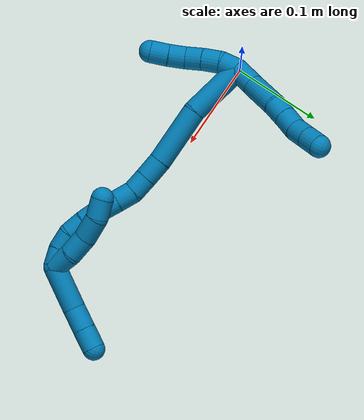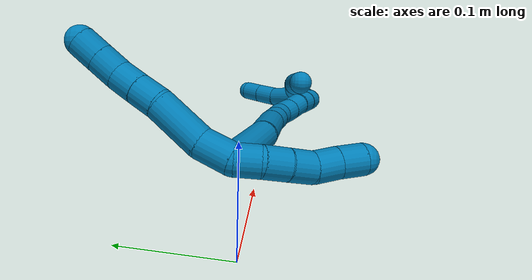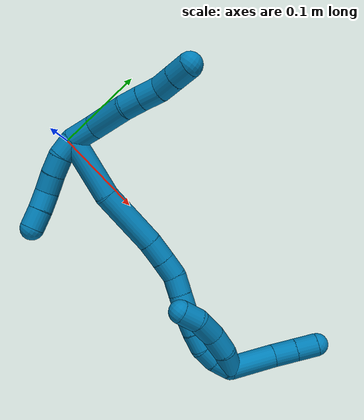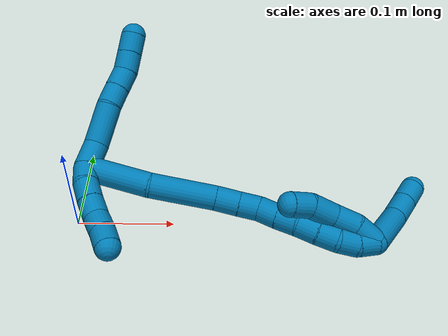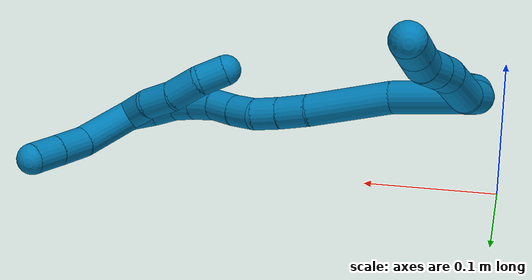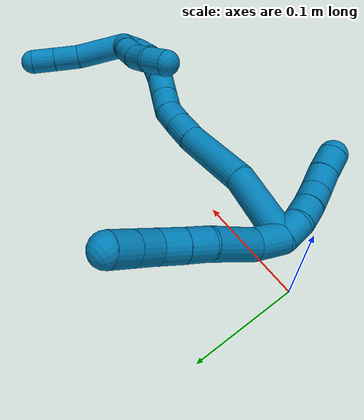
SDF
<sdf version="1.7">
 <world name="default">
  <model name="9">
   <static>0</static>
   <link name="9">
    <collision name="collision-cylinder-e_1_2_8">
     <pose>0.005603 0.002586 -0.011868 -2.92702 0.43216 -2.22932</pose>
     <geometry><cylinder><radius>0.0125</radius><length>0.026754</length></cylinder></geometry>
     <surface>
      <friction><ode><mu>1.16</mu><mu2>1.16</mu2><slip1>0</slip1><slip2>0</slip2></ode></friction>
      <contact><ode><kp>1e+06</kp><kd>1</kd><max_vel>0</max_vel><min_depth>0.001</min_depth></ode></contact>
     </surface>
    </collision>
    <visual name="visual-cylinder-e_1_2_8">
     <pose>0.005603 0.002586 -0.011868 -2.92702 0.43216 -2.22932</pose>
     <geometry><cylinder><radius>0.0125</radius><length>0.026754</length></cylinder></geometry>
     <material><ambient>0 0.490196 0.709804 1</ambient></material>
    </visual>
    <collision name="collision-cylinder-e_2_8_9">
     <pose>0.020439 0.015241 -0.039958 -2.58611 0.450484 -1.35393</pose>
     <geometry><cylinder><radius>0.0125</radius><length>0.042415</length></cylinder></geometry>
     <surface>
      <friction><ode><mu>1.16</mu><mu2>1.16</mu2><slip1>0</slip1><slip2>0</slip2></ode></friction>
      <contact><ode><kp>1e+06</kp><kd>1</kd><max_vel>0</max_vel><min_depth>0.001</min_depth></ode></contact>
     </surface>
    </collision>
    <visual name="visual-cylinder-e_2_8_9">
     <pose>0.020439 0.015241 -0.039958 -2.58611 0.450484 -1.35393</pose>
     <geometry><cylinder><radius>0.0125</radius><length>0.042415</length></cylinder></geometry>
     <material><ambient>0 0.490196 0.709804 1</ambient></material>
    </visual>
    <collision name="collision-cylinder-e_3_9_10">
     <pose>0.034576 0.028274 -0.064493 -2.79902 0.507081 -1.96432</pose>
     <geometry><cylinder><radius>0.0125</radius><length>0.020193</length></cylinder></geometry>
     <surface>
      <friction><ode><mu>1.16</mu><mu2>1.16</mu2><slip1>0</slip1><slip2>0</slip2></ode></friction>
      <contact><ode><kp>1e+06</kp><kd>1</kd><max_vel>0</max_vel><min_depth>0.001</min_depth></ode></contact>
     </surface>
    </collision>
    <visual name="visual-cylinder-e_3_9_10">
     <pose>0.034576 0.028274 -0.064493 -2.79902 0.507081 -1.96432</pose>
     <geometry><cylinder><radius>0.0125</radius><length>0.020193</length></cylinder></geometry>
     <material><ambient>0 0.490196 0.709804 1</ambient></material>
    </visual>
    <collision name="collision-cylinder-e_4_10_11">
     <pose>0.044739 0.034222 -0.08113 -2.79753 0.53658 -2.01435</pose>
     <geometry><cylinder><radius>0.0125</radius><length>0.020577</length></cylinder></geometry>
     <surface>
      <friction><ode><mu>1.16</mu><mu2>1.16</mu2><slip1>0</slip1><slip2>0</slip2></ode></friction>
      <contact><ode><kp>1e+06</kp><kd>1</kd><max_vel>0</max_vel><min_depth>0.001</min_depth></ode></contact>
     </surface>
    </collision>
    <visual name="visual-cylinder-e_4_10_11">
     <pose>0.044739 0.034222 -0.08113 -2.79753 0.53658 -2.01435</pose>
     <geometry><cylinder><radius>0.0125</radius><length>0.020577</length></cylinder></geometry>
     <material><ambient>0 0.490196 0.709804 1</ambient></material>
    </visual>
    <collision name="collision-cylinder-e_5_11_12">
     <pose>0.053506 0.042344 -0.097299 -2.56153 0.357939 -1.08987</pose>
     <geometry><cylinder><radius>0.0125</radius><length>0.020026</length></cylinder></geometry>
     <surface>
      <friction><ode><mu>1.16</mu><mu2>1.16</mu2><slip1>0</slip1><slip2>0</slip2></ode></friction>
      <contact><ode><kp>1e+06</kp><kd>1</kd><max_vel>0</max_vel><min_depth>0.001</min_depth></ode></contact>
     </surface>
    </collision>
    <visual name="visual-cylinder-e_5_11_12">
     <pose>0.053506 0.042344 -0.097299 -2.56153 0.357939 -1.08987</pose>
     <geometry><cylinder><radius>0.0125</radius><length>0.020026</length></cylinder></geometry>
     <material><ambient>0 0.490196 0.709804 1</ambient></material>
    </visual>
    <collision name="collision-cylinder-e_6_12_6">
     <pose>0.060532 0.052628 -0.112987 -2.56112 0.358792 -1.09136</pose>
     <geometry><cylinder><radius>0.0125</radius><length>0.020035</length></cylinder></geometry>
     <surface>
      <friction><ode><mu>1.16</mu><mu2>1.16</mu2><slip1>0</slip1><slip2>0</slip2></ode></friction>
      <contact><ode><kp>1e+06</kp><kd>1</kd><max_vel>0</max_vel><min_depth>0.001</min_depth></ode></contact>
     </surface>
    </collision>
    <visual name="visual-cylinder-e_6_12_6">
     <pose>0.060532 0.052628 -0.112987 -2.56112 0.358792 -1.09136</pose>
     <geometry><cylinder><radius>0.0125</radius><length>0.020035</length></cylinder></geometry>
     <material><ambient>0 0.490196 0.709804 1</ambient></material>
    </visual>
    <collision name="collision-cylinder-e_1_2_13">
     <pose>-0.000178 -0.000176 0.009997 0.017642 -0.017762 -0.000157</pose>
     <geometry><cylinder><radius>0.0125</radius><length>0.02</length></cylinder></geometry>
     <surface>
      <friction><ode><mu>1.16</mu><mu2>1.16</mu2><slip1>0</slip1><slip2>0</slip2></ode></friction>
      <contact><ode><kp>1e+06</kp><kd>1</kd><max_vel>0</max_vel><min_depth>0.001</min_depth></ode></contact>
     </surface>
    </collision>
    <visual name="visual-cylinder-e_1_2_13">
     <pose>-0.000178 -0.000176 0.009997 0.017642 -0.017762 -0.000157</pose>
     <geometry><cylinder><radius>0.0125</radius><length>0.02</length></cylinder></geometry>
     <material><ambient>0 0.490196 0.709804 1</ambient></material>
    </visual>
    <collision name="collision-cylinder-e_2_13_14">
     <pose>0.001395 -0.002367 0.029631 0.206062 0.175905 0.018235</pose>
     <geometry><cylinder><radius>0.0125</radius><length>0.02</length></cylinder></geometry>
     <surface>
      <friction><ode><mu>1.16</mu><mu2>1.16</mu2><slip1>0</slip1><slip2>0</slip2></ode></friction>
      <contact><ode><kp>1e+06</kp><kd>1</kd><max_vel>0</max_vel><min_depth>0.001</min_depth></ode></contact>
     </surface>
    </collision>
    <visual name="visual-cylinder-e_2_13_14">
     <pose>0.001395 -0.002367 0.029631 0.206062 0.175905 0.018235</pose>
     <geometry><cylinder><radius>0.0125</radius><length>0.02</length></cylinder></geometry>
     <material><ambient>0 0.490196 0.709804 1</ambient></material>
    </visual>
    <collision name="collision-cylinder-e_3_14_15">
     <pose>0.005523 -0.006791 0.048678 0.250659 0.240156 0.030401</pose>
     <geometry><cylinder><radius>0.0125</radius><length>0.02</length></cylinder></geometry>
     <surface>
      <friction><ode><mu>1.16</mu><mu2>1.16</mu2><slip1>0</slip1><slip2>0</slip2></ode></friction>
      <contact><ode><kp>1e+06</kp><kd>1</kd><max_vel>0</max_vel><min_depth>0.001</min_depth></ode></contact>
     </surface>
    </collision>
    <visual name="visual-cylinder-e_3_14_15">
     <pose>0.005523 -0.006791 0.048678 0.250659 0.240156 0.030401</pose>
     <geometry><cylinder><radius>0.0125</radius><length>0.02</length></cylinder></geometry>
     <material><ambient>0 0.490196 0.709804 1</ambient></material>
    </visual>
    <collision name="collision-cylinder-e_4_15_16">
     <pose>0.010999 -0.00853 0.067572 -0.070591 0.314922 -0.011213</pose>
     <geometry><cylinder><radius>0.0125</radius><length>0.02</length></cylinder></geometry>
     <surface>
      <friction><ode><mu>1.16</mu><mu2>1.16</mu2><slip1>0</slip1><slip2>0</slip2></ode></friction>
      <contact><ode><kp>1e+06</kp><kd>1</kd><max_vel>0</max_vel><min_depth>0.001</min_depth></ode></contact>
     </surface>
    </collision>
    <visual name="visual-cylinder-e_4_15_16">
     <pose>0.010999 -0.00853 0.067572 -0.070591 0.314922 -0.011213</pose>
     <geometry><cylinder><radius>0.0125</radius><length>0.02</length></cylinder></geometry>
     <material><ambient>0 0.490196 0.709804 1</ambient></material>
    </visual>
    <collision name="collision-cylinder-e_5_16_5">
     <pose>0.016463 -0.00734 0.086759 -0.053465 0.238921 -0.006419</pose>
     <geometry><cylinder><radius>0.0125</radius><length>0.02</length></cylinder></geometry>
     <surface>
      <friction><ode><mu>1.16</mu><mu2>1.16</mu2><slip1>0</slip1><slip2>0</slip2></ode></friction>
      <contact><ode><kp>1e+06</kp><kd>1</kd><max_vel>0</max_vel><min_depth>0.001</min_depth></ode></contact>
     </surface>
    </collision>
    <visual name="visual-cylinder-e_5_16_5">
     <pose>0.016463 -0.00734 0.086759 -0.053465 0.238921 -0.006419</pose>
     <geometry><cylinder><radius>0.0125</radius><length>0.02</length></cylinder></geometry>
     <material><ambient>0 0.490196 0.709804 1</ambient></material>
    </visual>
    <collision name="collision-cylinder-e_1_2_17">
     <pose>0.02937 -0.007481 0.012116 0.553132 1.11935 0.351969</pose>
     <geometry><cylinder><radius>0.0125</radius><length>0.065279</length></cylinder></geometry>
     <surface>
      <friction><ode><mu>1.16</mu><mu2>1.16</mu2><slip1>0</slip1><slip2>0</slip2></ode></friction>
      <contact><ode><kp>1e+06</kp><kd>1</kd><max_vel>0</max_vel><min_depth>0.001</min_depth></ode></contact>
     </surface>
    </collision>
    <visual name="visual-cylinder-e_1_2_17">
     <pose>0.02937 -0.007481 0.012116 0.553132 1.11935 0.351969</pose>
     <geometry><cylinder><radius>0.0125</radius><length>0.065279</length></cylinder></geometry>
     <material><ambient>0 0.490196 0.709804 1</ambient></material>
    </visual>
    <collision name="collision-cylinder-e_2_17_18">
     <pose>0.08907 -0.026145 0.030354 1.06995 1.17289 0.750214</pose>
     <geometry><cylinder><radius>0.0125</radius><length>0.065802</length></cylinder></geometry>
     <surface>
      <friction><ode><mu>1.16</mu><mu2>1.16</mu2><slip1>0</slip1><slip2>0</slip2></ode></friction>
      <contact><ode><kp>1e+06</kp><kd>1</kd><max_vel>0</max_vel><min_depth>0.001</min_depth></ode></contact>
     </surface>
    </collision>
    <visual name="visual-cylinder-e_2_17_18">
     <pose>0.08907 -0.026145 0.030354 1.06995 1.17289 0.750214</pose>
     <geometry><cylinder><radius>0.0125</radius><length>0.065802</length></cylinder></geometry>
     <material><ambient>0 0.490196 0.709804 1</ambient></material>
    </visual>
    <collision name="collision-cylinder-e_3_18_19">
     <pose>0.130294 -0.041001 0.039906 0.819706 1.1385 0.542329</pose>
     <geometry><cylinder><radius>0.0125</radius><length>0.023993</length></cylinder></geometry>
     <surface>
      <friction><ode><mu>1.16</mu><mu2>1.16</mu2><slip1>0</slip1><slip2>0</slip2></ode></friction>
      <contact><ode><kp>1e+06</kp><kd>1</kd><max_vel>0</max_vel><min_depth>0.001</min_depth></ode></contact>
     </surface>
    </collision>
    <visual name="visual-cylinder-e_3_18_19">
     <pose>0.130294 -0.041001 0.039906 0.819706 1.1385 0.542329</pose>
     <geometry><cylinder><radius>0.0125</radius><length>0.023993</length></cylinder></geometry>
     <material><ambient>0 0.490196 0.709804 1</ambient></material>
    </visual>
    <collision name="collision-cylinder-e_4_19_20">
     <pose>0.150792 -0.047382 0.04649 0.709104 1.1624 0.477092</pose>
     <geometry><cylinder><radius>0.0125</radius><length>0.020932</length></cylinder></geometry>
     <surface>
      <friction><ode><mu>1.16</mu><mu2>1.16</mu2><slip1>0</slip1><slip2>0</slip2></ode></friction>
      <contact><ode><kp>1e+06</kp><kd>1</kd><max_vel>0</max_vel><min_depth>0.001</min_depth></ode></contact>
     </surface>
    </collision>
    <visual name="visual-cylinder-e_4_19_20">
     <pose>0.150792 -0.047382 0.04649 0.709104 1.1624 0.477092</pose>
     <geometry><cylinder><radius>0.0125</radius><length>0.020932</length></cylinder></geometry>
     <material><ambient>0 0.490196 0.709804 1</ambient></material>
    </visual>
    <collision name="collision-cylinder-e_5_20_21">
     <pose>0.168823 -0.051439 0.05568 0.220134 0.937609 0.111826</pose>
     <geometry><cylinder><radius>0.0125</radius><length>0.020904</length></cylinder></geometry>
     <surface>
      <friction><ode><mu>1.16</mu><mu2>1.16</mu2><slip1>0</slip1><slip2>0</slip2></ode></friction>
      <contact><ode><kp>1e+06</kp><kd>1</kd><max_vel>0</max_vel><min_depth>0.001</min_depth></ode></contact>
     </surface>
    </collision>
    <visual name="visual-cylinder-e_5_20_21">
     <pose>0.168823 -0.051439 0.05568 0.220134 0.937609 0.111826</pose>
     <geometry><cylinder><radius>0.0125</radius><length>0.020904</length></cylinder></geometry>
     <material><ambient>0 0.490196 0.709804 1</ambient></material>
    </visual>
    <collision name="collision-cylinder-e_6_21_22">
     <pose>0.185947 -0.0533 0.067838 0.083209 0.955852 0.043118</pose>
     <geometry><cylinder><radius>0.0125</radius><length>0.021298</length></cylinder></geometry>
     <surface>
      <friction><ode><mu>1.16</mu><mu2>1.16</mu2><slip1>0</slip1><slip2>0</slip2></ode></friction>
      <contact><ode><kp>1e+06</kp><kd>1</kd><max_vel>0</max_vel><min_depth>0.001</min_depth></ode></contact>
     </surface>
    </collision>
    <visual name="visual-cylinder-e_6_21_22">
     <pose>0.185947 -0.0533 0.067838 0.083209 0.955852 0.043118</pose>
     <geometry><cylinder><radius>0.0125</radius><length>0.021298</length></cylinder></geometry>
     <material><ambient>0 0.490196 0.709804 1</ambient></material>
    </visual>
    <collision name="collision-cylinder-e_7_22_23">
     <pose>0.203277 -0.056249 0.079353 0.424607 0.969756 0.226148</pose>
     <geometry><cylinder><radius>0.0125</radius><length>0.020932</length></cylinder></geometry>
     <surface>
      <friction><ode><mu>1.16</mu><mu2>1.16</mu2><slip1>0</slip1><slip2>0</slip2></ode></friction>
      <contact><ode><kp>1e+06</kp><kd>1</kd><max_vel>0</max_vel><min_depth>0.001</min_depth></ode></contact>
     </surface>
    </collision>
    <visual name="visual-cylinder-e_7_22_23">
     <pose>0.203277 -0.056249 0.079353 0.424607 0.969756 0.226148</pose>
     <geometry><cylinder><radius>0.0125</radius><length>0.020932</length></cylinder></geometry>
     <material><ambient>0 0.490196 0.709804 1</ambient></material>
    </visual>
    <collision name="collision-cylinder-e_8_23_24">
     <pose>0.220508 -0.061414 0.089153 0.554123 1.02842 0.318567</pose>
     <geometry><cylinder><radius>0.0125</radius><length>0.02008</length></cylinder></geometry>
     <surface>
      <friction><ode><mu>1.16</mu><mu2>1.16</mu2><slip1>0</slip1><slip2>0</slip2></ode></friction>
      <contact><ode><kp>1e+06</kp><kd>1</kd><max_vel>0</max_vel><min_depth>0.001</min_depth></ode></contact>
     </surface>
    </collision>
    <visual name="visual-cylinder-e_8_23_24">
     <pose>0.220508 -0.061414 0.089153 0.554123 1.02842 0.318567</pose>
     <geometry><cylinder><radius>0.0125</radius><length>0.02008</length></cylinder></geometry>
     <material><ambient>0 0.490196 0.709804 1</ambient></material>
    </visual>
    <collision name="collision-cylinder-e_9_24_25">
     <pose>0.238157 -0.068394 0.095186 1.20556 1.10458 0.802261</pose>
     <geometry><cylinder><radius>0.0125</radius><length>0.020261</length></cylinder></geometry>
     <surface>
      <friction><ode><mu>1.16</mu><mu2>1.16</mu2><slip1>0</slip1><slip2>0</slip2></ode></friction>
      <contact><ode><kp>1e+06</kp><kd>1</kd><max_vel>0</max_vel><min_depth>0.001</min_depth></ode></contact>
     </surface>
    </collision>
    <visual name="visual-cylinder-e_9_24_25">
     <pose>0.238157 -0.068394 0.095186 1.20556 1.10458 0.802261</pose>
     <geometry><cylinder><radius>0.0125</radius><length>0.020261</length></cylinder></geometry>
     <material><ambient>0 0.490196 0.709804 1</ambient></material>
    </visual>
    <collision name="collision-cylinder-e_10_25_1">
     <pose>0.256906 -0.075704 0.095465 1.98603 1.23914 1.66047</pose>
     <geometry><cylinder><radius>0.0125</radius><length>0.020518</length></cylinder></geometry>
     <surface>
      <friction><ode><mu>1.16</mu><mu2>1.16</mu2><slip1>0</slip1><slip2>0</slip2></ode></friction>
      <contact><ode><kp>1e+06</kp><kd>1</kd><max_vel>0</max_vel><min_depth>0.001</min_depth></ode></contact>
     </surface>
    </collision>
    <visual name="visual-cylinder-e_10_25_1">
     <pose>0.256906 -0.075704 0.095465 1.98603 1.23914 1.66047</pose>
     <geometry><cylinder><radius>0.0125</radius><length>0.020518</length></cylinder></geometry>
     <material><ambient>0 0.490196 0.709804 1</ambient></material>
    </visual>
    <collision name="collision-cylinder-e_1_1_26">
     <pose>0.258425 -0.071081 0.08806 -2.23866 -0.696543 1.28548</pose>
     <geometry><cylinder><radius>0.0125</radius><length>0.025503</length></cylinder></geometry>
     <surface>
      <friction><ode><mu>1.16</mu><mu2>1.16</mu2><slip1>0</slip1><slip2>0</slip2></ode></friction>
      <contact><ode><kp>1e+06</kp><kd>1</kd><max_vel>0</max_vel><min_depth>0.001</min_depth></ode></contact>
     </surface>
    </collision>
    <visual name="visual-cylinder-e_1_1_26">
     <pose>0.258425 -0.071081 0.08806 -2.23866 -0.696543 1.28548</pose>
     <geometry><cylinder><radius>0.0125</radius><length>0.025503</length></cylinder></geometry>
     <material><ambient>0 0.490196 0.709804 1</ambient></material>
    </visual>
    <collision name="collision-cylinder-e_2_26_27">
     <pose>0.239873 -0.057368 0.078058 -2.14975 -0.963387 1.53648</pose>
     <geometry><cylinder><radius>0.0125</radius><length>0.025259</length></cylinder></geometry>
     <surface>
      <friction><ode><mu>1.16</mu><mu2>1.16</mu2><slip1>0</slip1><slip2>0</slip2></ode></friction>
      <contact><ode><kp>1e+06</kp><kd>1</kd><max_vel>0</max_vel><min_depth>0.001</min_depth></ode></contact>
     </surface>
    </collision>
    <visual name="visual-cylinder-e_2_26_27">
     <pose>0.239873 -0.057368 0.078058 -2.14975 -0.963387 1.53648</pose>
     <geometry><cylinder><radius>0.0125</radius><length>0.025259</length></cylinder></geometry>
     <material><ambient>0 0.490196 0.709804 1</ambient></material>
    </visual>
    <collision name="collision-cylinder-e_3_27_28">
     <pose>0.219179 -0.042924 0.071853 -1.83343 -0.870047 1.08986</pose>
     <geometry><cylinder><radius>0.0125</radius><length>0.027013</length></cylinder></geometry>
     <surface>
      <friction><ode><mu>1.16</mu><mu2>1.16</mu2><slip1>0</slip1><slip2>0</slip2></ode></friction>
      <contact><ode><kp>1e+06</kp><kd>1</kd><max_vel>0</max_vel><min_depth>0.001</min_depth></ode></contact>
     </surface>
    </collision>
    <visual name="visual-cylinder-e_3_27_28">
     <pose>0.219179 -0.042924 0.071853 -1.83343 -0.870047 1.08986</pose>
     <geometry><cylinder><radius>0.0125</radius><length>0.027013</length></cylinder></geometry>
     <material><ambient>0 0.490196 0.709804 1</ambient></material>
    </visual>
    <collision name="collision-cylinder-e_4_28_4">
     <pose>0.199194 -0.029186 0.070923 -1.32607 -1.05397 0.853066</pose>
     <geometry><cylinder><radius>0.0125</radius><length>0.022224</length></cylinder></geometry>
     <surface>
      <friction><ode><mu>1.16</mu><mu2>1.16</mu2><slip1>0</slip1><slip2>0</slip2></ode></friction>
      <contact><ode><kp>1e+06</kp><kd>1</kd><max_vel>0</max_vel><min_depth>0.001</min_depth></ode></contact>
     </surface>
    </collision>
    <visual name="visual-cylinder-e_4_28_4">
     <pose>0.199194 -0.029186 0.070923 -1.32607 -1.05397 0.853066</pose>
     <geometry><cylinder><radius>0.0125</radius><length>0.022224</length></cylinder></geometry>
     <material><ambient>0 0.490196 0.709804 1</ambient></material>
    </visual>
    <collision name="collision-cylinder-e_1_1_29">
     <pose>0.281276 -0.087062 0.075457 2.72302 0.622889 1.97517</pose>
     <geometry><cylinder><radius>0.0125</radius><length>0.050292</length></cylinder></geometry>
     <surface>
      <friction><ode><mu>1.16</mu><mu2>1.16</mu2><slip1>0</slip1><slip2>0</slip2></ode></friction>
      <contact><ode><kp>1e+06</kp><kd>1</kd><max_vel>0</max_vel><min_depth>0.001</min_depth></ode></contact>
     </surface>
    </collision>
    <visual name="visual-cylinder-e_1_1_29">
     <pose>0.281276 -0.087062 0.075457 2.72302 0.622889 1.97517</pose>
     <geometry><cylinder><radius>0.0125</radius><length>0.050292</length></cylinder></geometry>
     <material><ambient>0 0.490196 0.709804 1</ambient></material>
    </visual>
    <collision name="collision-cylinder-e_2_29_30">
     <pose>0.303915 -0.097279 0.046737 2.95335 0.661349 2.60486</pose>
     <geometry><cylinder><radius>0.0125</radius><length>0.025954</length></cylinder></geometry>
     <surface>
      <friction><ode><mu>1.16</mu><mu2>1.16</mu2><slip1>0</slip1><slip2>0</slip2></ode></friction>
      <contact><ode><kp>1e+06</kp><kd>1</kd><max_vel>0</max_vel><min_depth>0.001</min_depth></ode></contact>
     </surface>
    </collision>
    <visual name="visual-cylinder-e_2_29_30">
     <pose>0.303915 -0.097279 0.046737 2.95335 0.661349 2.60486</pose>
     <geometry><cylinder><radius>0.0125</radius><length>0.025954</length></cylinder></geometry>
     <material><ambient>0 0.490196 0.709804 1</ambient></material>
    </visual>
    <collision name="collision-cylinder-e_3_30_3">
     <pose>0.319144 -0.100753 0.027406 2.97514 0.657489 2.66192</pose>
     <geometry><cylinder><radius>0.0125</radius><length>0.023755</length></cylinder></geometry>
     <surface>
      <friction><ode><mu>1.16</mu><mu2>1.16</mu2><slip1>0</slip1><slip2>0</slip2></ode></friction>
      <contact><ode><kp>1e+06</kp><kd>1</kd><max_vel>0</max_vel><min_depth>0.001</min_depth></ode></contact>
     </surface>
    </collision>
    <visual name="visual-cylinder-e_3_30_3">
     <pose>0.319144 -0.100753 0.027406 2.97514 0.657489 2.66192</pose>
     <geometry><cylinder><radius>0.0125</radius><length>0.023755</length></cylinder></geometry>
     <material><ambient>0 0.490196 0.709804 1</ambient></material>
    </visual>
    <collision name="collision-sphere-3">
     <pose>0.326403 -0.102311 0.018135 0 -0 0</pose>
     <geometry><sphere><radius>0.0125</radius></sphere></geometry>
     <surface>
      <friction><ode><mu>1.16</mu><mu2>1.16</mu2><slip1>0</slip1><slip2>0</slip2></ode></friction>
      <contact><ode><kp>1e+06</kp><kd>1</kd><max_vel>0</max_vel><min_depth>0.001</min_depth></ode></contact>
     </surface>
    </collision>
    <visual name="visual-sphere-3">
     <pose>0.326403 -0.102311 0.018135 0 -0 0</pose>
     <geometry><sphere><radius>0.0125</radius></sphere></geometry>
     <material><ambient>0 0.490196 0.709804 1</ambient></material>
    </visual>
    <collision name="collision-sphere-30">
     <pose>0.311886 -0.099196 0.036677 0 -0 0</pose>
     <geometry><sphere><radius>0.0125</radius></sphere></geometry>
     <surface>
      <friction><ode><mu>1.16</mu><mu2>1.16</mu2><slip1>0</slip1><slip2>0</slip2></ode></friction>
      <contact><ode><kp>1e+06</kp><kd>1</kd><max_vel>0</max_vel><min_depth>0.001</min_depth></ode></contact>
     </surface>
    </collision>
    <visual name="visual-sphere-30">
     <pose>0.311886 -0.099196 0.036677 0 -0 0</pose>
     <geometry><sphere><radius>0.0125</radius></sphere></geometry>
     <material><ambient>0 0.490196 0.709804 1</ambient></material>
    </visual>
    <collision name="collision-sphere-29">
     <pose>0.295945 -0.095363 0.056797 0 -0 0</pose>
     <geometry><sphere><radius>0.0125</radius></sphere></geometry>
     <surface>
      <friction><ode><mu>1.16</mu><mu2>1.16</mu2><slip1>0</slip1><slip2>0</slip2></ode></friction>
      <contact><ode><kp>1e+06</kp><kd>1</kd><max_vel>0</max_vel><min_depth>0.001</min_depth></ode></contact>
     </surface>
    </collision>
    <visual name="visual-sphere-29">
     <pose>0.295945 -0.095363 0.056797 0 -0 0</pose>
     <geometry><sphere><radius>0.0125</radius></sphere></geometry>
     <material><ambient>0 0.490196 0.709804 1</ambient></material>
    </visual>
    <collision name="collision-sphere-4">
     <pose>0.189533 -0.023859 0.072253 0 -0 0</pose>
     <geometry><sphere><radius>0.0125</radius></sphere></geometry>
     <surface>
      <friction><ode><mu>1.16</mu><mu2>1.16</mu2><slip1>0</slip1><slip2>0</slip2></ode></friction>
      <contact><ode><kp>1e+06</kp><kd>1</kd><max_vel>0</max_vel><min_depth>0.001</min_depth></ode></contact>
     </surface>
    </collision>
    <visual name="visual-sphere-4">
     <pose>0.189533 -0.023859 0.072253 0 -0 0</pose>
     <geometry><sphere><radius>0.0125</radius></sphere></geometry>
     <material><ambient>0 0.490196 0.709804 1</ambient></material>
    </visual>
    <collision name="collision-sphere-28">
     <pose>0.208855 -0.034514 0.069592 0 -0 0</pose>
     <geometry><sphere><radius>0.0125</radius></sphere></geometry>
     <surface>
      <friction><ode><mu>1.16</mu><mu2>1.16</mu2><slip1>0</slip1><slip2>0</slip2></ode></friction>
      <contact><ode><kp>1e+06</kp><kd>1</kd><max_vel>0</max_vel><min_depth>0.001</min_depth></ode></contact>
     </surface>
    </collision>
    <visual name="visual-sphere-28">
     <pose>0.208855 -0.034514 0.069592 0 -0 0</pose>
     <geometry><sphere><radius>0.0125</radius></sphere></geometry>
     <material><ambient>0 0.490196 0.709804 1</ambient></material>
    </visual>
    <collision name="collision-sphere-27">
     <pose>0.229503 -0.051334 0.074114 0 -0 0</pose>
     <geometry><sphere><radius>0.0125</radius></sphere></geometry>
     <surface>
      <friction><ode><mu>1.16</mu><mu2>1.16</mu2><slip1>0</slip1><slip2>0</slip2></ode></friction>
      <contact><ode><kp>1e+06</kp><kd>1</kd><max_vel>0</max_vel><min_depth>0.001</min_depth></ode></contact>
     </surface>
    </collision>
    <visual name="visual-sphere-27">
     <pose>0.229503 -0.051334 0.074114 0 -0 0</pose>
     <geometry><sphere><radius>0.0125</radius></sphere></geometry>
     <material><ambient>0 0.490196 0.709804 1</ambient></material>
    </visual>
    <collision name="collision-sphere-26">
     <pose>0.250244 -0.063401 0.082002 0 -0 0</pose>
     <geometry><sphere><radius>0.0125</radius></sphere></geometry>
     <surface>
      <friction><ode><mu>1.16</mu><mu2>1.16</mu2><slip1>0</slip1><slip2>0</slip2></ode></friction>
      <contact><ode><kp>1e+06</kp><kd>1</kd><max_vel>0</max_vel><min_depth>0.001</min_depth></ode></contact>
     </surface>
    </collision>
    <visual name="visual-sphere-26">
     <pose>0.250244 -0.063401 0.082002 0 -0 0</pose>
     <geometry><sphere><radius>0.0125</radius></sphere></geometry>
     <material><ambient>0 0.490196 0.709804 1</ambient></material>
    </visual>
    <collision name="collision-sphere-1">
     <pose>0.266606 -0.078761 0.094118 0 -0 0</pose>
     <geometry><sphere><radius>0.0125</radius></sphere></geometry>
     <surface>
      <friction><ode><mu>1.16</mu><mu2>1.16</mu2><slip1>0</slip1><slip2>0</slip2></ode></friction>
      <contact><ode><kp>1e+06</kp><kd>1</kd><max_vel>0</max_vel><min_depth>0.001</min_depth></ode></contact>
     </surface>
    </collision>
    <visual name="visual-sphere-1">
     <pose>0.266606 -0.078761 0.094118 0 -0 0</pose>
     <geometry><sphere><radius>0.0125</radius></sphere></geometry>
     <material><ambient>0 0.490196 0.709804 1</ambient></material>
    </visual>
    <collision name="collision-sphere-25">
     <pose>0.247206 -0.072648 0.096813 0 -0 0</pose>
     <geometry><sphere><radius>0.0125</radius></sphere></geometry>
     <surface>
      <friction><ode><mu>1.16</mu><mu2>1.16</mu2><slip1>0</slip1><slip2>0</slip2></ode></friction>
      <contact><ode><kp>1e+06</kp><kd>1</kd><max_vel>0</max_vel><min_depth>0.001</min_depth></ode></contact>
     </surface>
    </collision>
    <visual name="visual-sphere-25">
     <pose>0.247206 -0.072648 0.096813 0 -0 0</pose>
     <geometry><sphere><radius>0.0125</radius></sphere></geometry>
     <material><ambient>0 0.490196 0.709804 1</ambient></material>
    </visual>
    <collision name="collision-sphere-24">
     <pose>0.229108 -0.064141 0.09356 0 -0 0</pose>
     <geometry><sphere><radius>0.0125</radius></sphere></geometry>
     <surface>
      <friction><ode><mu>1.16</mu><mu2>1.16</mu2><slip1>0</slip1><slip2>0</slip2></ode></friction>
      <contact><ode><kp>1e+06</kp><kd>1</kd><max_vel>0</max_vel><min_depth>0.001</min_depth></ode></contact>
     </surface>
    </collision>
    <visual name="visual-sphere-24">
     <pose>0.229108 -0.064141 0.09356 0 -0 0</pose>
     <geometry><sphere><radius>0.0125</radius></sphere></geometry>
     <material><ambient>0 0.490196 0.709804 1</ambient></material>
    </visual>
    <collision name="collision-sphere-23">
     <pose>0.211909 -0.058687 0.084746 0 -0 0</pose>
     <geometry><sphere><radius>0.0125</radius></sphere></geometry>
     <surface>
      <friction><ode><mu>1.16</mu><mu2>1.16</mu2><slip1>0</slip1><slip2>0</slip2></ode></friction>
      <contact><ode><kp>1e+06</kp><kd>1</kd><max_vel>0</max_vel><min_depth>0.001</min_depth></ode></contact>
     </surface>
    </collision>
    <visual name="visual-sphere-23">
     <pose>0.211909 -0.058687 0.084746 0 -0 0</pose>
     <geometry><sphere><radius>0.0125</radius></sphere></geometry>
     <material><ambient>0 0.490196 0.709804 1</ambient></material>
    </visual>
    <collision name="collision-sphere-22">
     <pose>0.194645 -0.05381 0.07396 0 -0 0</pose>
     <geometry><sphere><radius>0.0125</radius></sphere></geometry>
     <surface>
      <friction><ode><mu>1.16</mu><mu2>1.16</mu2><slip1>0</slip1><slip2>0</slip2></ode></friction>
      <contact><ode><kp>1e+06</kp><kd>1</kd><max_vel>0</max_vel><min_depth>0.001</min_depth></ode></contact>
     </surface>
    </collision>
    <visual name="visual-sphere-22">
     <pose>0.194645 -0.05381 0.07396 0 -0 0</pose>
     <geometry><sphere><radius>0.0125</radius></sphere></geometry>
     <material><ambient>0 0.490196 0.709804 1</ambient></material>
    </visual>
    <collision name="collision-sphere-21">
     <pose>0.177249 -0.052789 0.061715 0 -0 0</pose>
     <geometry><sphere><radius>0.0125</radius></sphere></geometry>
     <surface>
      <friction><ode><mu>1.16</mu><mu2>1.16</mu2><slip1>0</slip1><slip2>0</slip2></ode></friction>
      <contact><ode><kp>1e+06</kp><kd>1</kd><max_vel>0</max_vel><min_depth>0.001</min_depth></ode></contact>
     </surface>
    </collision>
    <visual name="visual-sphere-21">
     <pose>0.177249 -0.052789 0.061715 0 -0 0</pose>
     <geometry><sphere><radius>0.0125</radius></sphere></geometry>
     <material><ambient>0 0.490196 0.709804 1</ambient></material>
    </visual>
    <collision name="collision-sphere-12">
     <pose>0.057014 0.047484 -0.105143 0 -0 0</pose>
     <geometry><sphere><radius>0.0125</radius></sphere></geometry>
     <surface>
      <friction><ode><mu>1.16</mu><mu2>1.16</mu2><slip1>0</slip1><slip2>0</slip2></ode></friction>
      <contact><ode><kp>1e+06</kp><kd>1</kd><max_vel>0</max_vel><min_depth>0.001</min_depth></ode></contact>
     </surface>
    </collision>
    <visual name="visual-sphere-12">
     <pose>0.057014 0.047484 -0.105143 0 -0 0</pose>
     <geometry><sphere><radius>0.0125</radius></sphere></geometry>
     <material><ambient>0 0.490196 0.709804 1</ambient></material>
    </visual>
    <collision name="collision-sphere-11">
     <pose>0.049998 0.037204 -0.089455 0 -0 0</pose>
     <geometry><sphere><radius>0.0125</radius></sphere></geometry>
     <surface>
      <friction><ode><mu>1.16</mu><mu2>1.16</mu2><slip1>0</slip1><slip2>0</slip2></ode></friction>
      <contact><ode><kp>1e+06</kp><kd>1</kd><max_vel>0</max_vel><min_depth>0.001</min_depth></ode></contact>
     </surface>
    </collision>
    <visual name="visual-sphere-11">
     <pose>0.049998 0.037204 -0.089455 0 -0 0</pose>
     <geometry><sphere><radius>0.0125</radius></sphere></geometry>
     <material><ambient>0 0.490196 0.709804 1</ambient></material>
    </visual>
    <collision name="collision-sphere-10">
     <pose>0.039479 0.031239 -0.072806 0 -0 0</pose>
     <geometry><sphere><radius>0.0125</radius></sphere></geometry>
     <surface>
      <friction><ode><mu>1.16</mu><mu2>1.16</mu2><slip1>0</slip1><slip2>0</slip2></ode></friction>
      <contact><ode><kp>1e+06</kp><kd>1</kd><max_vel>0</max_vel><min_depth>0.001</min_depth></ode></contact>
     </surface>
    </collision>
    <visual name="visual-sphere-10">
     <pose>0.039479 0.031239 -0.072806 0 -0 0</pose>
     <geometry><sphere><radius>0.0125</radius></sphere></geometry>
     <material><ambient>0 0.490196 0.709804 1</ambient></material>
    </visual>
    <collision name="collision-sphere-9">
     <pose>0.029673 0.025309 -0.05618 0 -0 0</pose>
     <geometry><sphere><radius>0.0125</radius></sphere></geometry>
     <surface>
      <friction><ode><mu>1.16</mu><mu2>1.16</mu2><slip1>0</slip1><slip2>0</slip2></ode></friction>
      <contact><ode><kp>1e+06</kp><kd>1</kd><max_vel>0</max_vel><min_depth>0.001</min_depth></ode></contact>
     </surface>
    </collision>
    <visual name="visual-sphere-9">
     <pose>0.029673 0.025309 -0.05618 0 -0 0</pose>
     <geometry><sphere><radius>0.0125</radius></sphere></geometry>
     <material><ambient>0 0.490196 0.709804 1</ambient></material>
    </visual>
    <collision name="collision-sphere-2">
     <geometry><sphere><radius>0.0125</radius></sphere></geometry>
     <surface>
      <friction><ode><mu>1.16</mu><mu2>1.16</mu2><slip1>0</slip1><slip2>0</slip2></ode></friction>
      <contact><ode><kp>1e+06</kp><kd>1</kd><max_vel>0</max_vel><min_depth>0.001</min_depth></ode></contact>
     </surface>
    </collision>
    <visual name="visual-sphere-2">
     <geometry><sphere><radius>0.0125</radius></sphere></geometry>
     <material><ambient>0 0.490196 0.709804 1</ambient></material>
    </visual>
    <collision name="collision-sphere-19">
     <pose>0.141187 -0.044675 0.043336 0 -0 0</pose>
     <geometry><sphere><radius>0.0125</radius></sphere></geometry>
     <surface>
      <friction><ode><mu>1.16</mu><mu2>1.16</mu2><slip1>0</slip1><slip2>0</slip2></ode></friction>
      <contact><ode><kp>1e+06</kp><kd>1</kd><max_vel>0</max_vel><min_depth>0.001</min_depth></ode></contact>
     </surface>
    </collision>
    <visual name="visual-sphere-19">
     <pose>0.141187 -0.044675 0.043336 0 -0 0</pose>
     <geometry><sphere><radius>0.0125</radius></sphere></geometry>
     <material><ambient>0 0.490196 0.709804 1</ambient></material>
    </visual>
    <collision name="collision-sphere-8">
     <pose>0.011205 0.005173 -0.023737 0 -0 0</pose>
     <geometry><sphere><radius>0.0125</radius></sphere></geometry>
     <surface>
      <friction><ode><mu>1.16</mu><mu2>1.16</mu2><slip1>0</slip1><slip2>0</slip2></ode></friction>
      <contact><ode><kp>1e+06</kp><kd>1</kd><max_vel>0</max_vel><min_depth>0.001</min_depth></ode></contact>
     </surface>
    </collision>
    <visual name="visual-sphere-8">
     <pose>0.011205 0.005173 -0.023737 0 -0 0</pose>
     <geometry><sphere><radius>0.0125</radius></sphere></geometry>
     <material><ambient>0 0.490196 0.709804 1</ambient></material>
    </visual>
    <collision name="collision-sphere-6">
     <pose>0.064049 0.057772 -0.12083 0 -0 0</pose>
     <geometry><sphere><radius>0.0125</radius></sphere></geometry>
     <surface>
      <friction><ode><mu>1.16</mu><mu2>1.16</mu2><slip1>0</slip1><slip2>0</slip2></ode></friction>
      <contact><ode><kp>1e+06</kp><kd>1</kd><max_vel>0</max_vel><min_depth>0.001</min_depth></ode></contact>
     </surface>
    </collision>
    <visual name="visual-sphere-6">
     <pose>0.064049 0.057772 -0.12083 0 -0 0</pose>
     <geometry><sphere><radius>0.0125</radius></sphere></geometry>
     <material><ambient>0 0.490196 0.709804 1</ambient></material>
    </visual>
    <collision name="collision-sphere-13">
     <pose>-0.000355 -0.000353 0.019994 0 -0 0</pose>
     <geometry><sphere><radius>0.0125</radius></sphere></geometry>
     <surface>
      <friction><ode><mu>1.16</mu><mu2>1.16</mu2><slip1>0</slip1><slip2>0</slip2></ode></friction>
      <contact><ode><kp>1e+06</kp><kd>1</kd><max_vel>0</max_vel><min_depth>0.001</min_depth></ode></contact>
     </surface>
    </collision>
    <visual name="visual-sphere-13">
     <pose>-0.000355 -0.000353 0.019994 0 -0 0</pose>
     <geometry><sphere><radius>0.0125</radius></sphere></geometry>
     <material><ambient>0 0.490196 0.709804 1</ambient></material>
    </visual>
    <collision name="collision-sphere-14">
     <pose>0.003145 -0.004382 0.039269 0 -0 0</pose>
     <geometry><sphere><radius>0.0125</radius></sphere></geometry>
     <surface>
      <friction><ode><mu>1.16</mu><mu2>1.16</mu2><slip1>0</slip1><slip2>0</slip2></ode></friction>
      <contact><ode><kp>1e+06</kp><kd>1</kd><max_vel>0</max_vel><min_depth>0.001</min_depth></ode></contact>
     </surface>
    </collision>
    <visual name="visual-sphere-14">
     <pose>0.003145 -0.004382 0.039269 0 -0 0</pose>
     <geometry><sphere><radius>0.0125</radius></sphere></geometry>
     <material><ambient>0 0.490196 0.709804 1</ambient></material>
    </visual>
    <collision name="collision-sphere-15">
     <pose>0.007902 -0.0092 0.058087 0 -0 0</pose>
     <geometry><sphere><radius>0.0125</radius></sphere></geometry>
     <surface>
      <friction><ode><mu>1.16</mu><mu2>1.16</mu2><slip1>0</slip1><slip2>0</slip2></ode></friction>
      <contact><ode><kp>1e+06</kp><kd>1</kd><max_vel>0</max_vel><min_depth>0.001</min_depth></ode></contact>
     </surface>
    </collision>
    <visual name="visual-sphere-15">
     <pose>0.007902 -0.0092 0.058087 0 -0 0</pose>
     <geometry><sphere><radius>0.0125</radius></sphere></geometry>
     <material><ambient>0 0.490196 0.709804 1</ambient></material>
    </visual>
    <collision name="collision-sphere-16">
     <pose>0.014097 -0.007859 0.077057 0 -0 0</pose>
     <geometry><sphere><radius>0.0125</radius></sphere></geometry>
     <surface>
      <friction><ode><mu>1.16</mu><mu2>1.16</mu2><slip1>0</slip1><slip2>0</slip2></ode></friction>
      <contact><ode><kp>1e+06</kp><kd>1</kd><max_vel>0</max_vel><min_depth>0.001</min_depth></ode></contact>
     </surface>
    </collision>
    <visual name="visual-sphere-16">
     <pose>0.014097 -0.007859 0.077057 0 -0 0</pose>
     <geometry><sphere><radius>0.0125</radius></sphere></geometry>
     <material><ambient>0 0.490196 0.709804 1</ambient></material>
    </visual>
    <collision name="collision-sphere-5">
     <pose>0.01883 -0.006821 0.096461 0 -0 0</pose>
     <geometry><sphere><radius>0.0125</radius></sphere></geometry>
     <surface>
      <friction><ode><mu>1.16</mu><mu2>1.16</mu2><slip1>0</slip1><slip2>0</slip2></ode></friction>
      <contact><ode><kp>1e+06</kp><kd>1</kd><max_vel>0</max_vel><min_depth>0.001</min_depth></ode></contact>
     </surface>
    </collision>
    <visual name="visual-sphere-5">
     <pose>0.01883 -0.006821 0.096461 0 -0 0</pose>
     <geometry><sphere><radius>0.0125</radius></sphere></geometry>
     <material><ambient>0 0.490196 0.709804 1</ambient></material>
    </visual>
    <collision name="collision-sphere-17">
     <pose>0.058739 -0.014962 0.024233 0 -0 0</pose>
     <geometry><sphere><radius>0.0125</radius></sphere></geometry>
     <surface>
      <friction><ode><mu>1.16</mu><mu2>1.16</mu2><slip1>0</slip1><slip2>0</slip2></ode></friction>
      <contact><ode><kp>1e+06</kp><kd>1</kd><max_vel>0</max_vel><min_depth>0.001</min_depth></ode></contact>
     </surface>
    </collision>
    <visual name="visual-sphere-17">
     <pose>0.058739 -0.014962 0.024233 0 -0 0</pose>
     <geometry><sphere><radius>0.0125</radius></sphere></geometry>
     <material><ambient>0 0.490196 0.709804 1</ambient></material>
    </visual>
    <collision name="collision-sphere-18">
     <pose>0.119401 -0.037328 0.036476 0 -0 0</pose>
     <geometry><sphere><radius>0.0125</radius></sphere></geometry>
     <surface>
      <friction><ode><mu>1.16</mu><mu2>1.16</mu2><slip1>0</slip1><slip2>0</slip2></ode></friction>
      <contact><ode><kp>1e+06</kp><kd>1</kd><max_vel>0</max_vel><min_depth>0.001</min_depth></ode></contact>
     </surface>
    </collision>
    <visual name="visual-sphere-18">
     <pose>0.119401 -0.037328 0.036476 0 -0 0</pose>
     <geometry><sphere><radius>0.0125</radius></sphere></geometry>
     <material><ambient>0 0.490196 0.709804 1</ambient></material>
    </visual>
    <collision name="collision-sphere-20">
     <pose>0.160398 -0.050088 0.049645 0 -0 0</pose>
     <geometry><sphere><radius>0.0125</radius></sphere></geometry>
     <surface>
      <friction><ode><mu>1.16</mu><mu2>1.16</mu2><slip1>0</slip1><slip2>0</slip2></ode></friction>
      <contact><ode><kp>1e+06</kp><kd>1</kd><max_vel>0</max_vel><min_depth>0.001</min_depth></ode></contact>
     </surface>
    </collision>
    <visual name="visual-sphere-20">
     <pose>0.160398 -0.050088 0.049645 0 -0 0</pose>
     <geometry><sphere><radius>0.0125</radius></sphere></geometry>
     <material><ambient>0 0.490196 0.709804 1</ambient></material>
    </visual>
    <inertial>
     <pose>0.131394 -0.030296 0.031622 0 -0 0</pose>
     <mass>0.75</mass>
     <inertia>
      <ixx>6.7e-05</ixx>
      <ixy>0</ixy>
      <ixz>0</ixz>
      <iyy>0.000104</iyy>
      <iyz>0</iyz>
      <izz>-6.1e-05</izz>
     </inertia>
    </inertial>
   </link>
   <pose>0.018844 0.006811 0.076339 1.61075 -0.117794 0.14579</pose>
  </model>
 </world>
</sdf>
